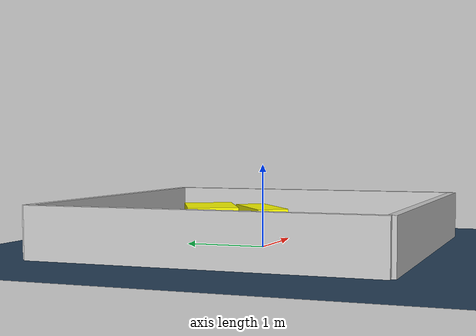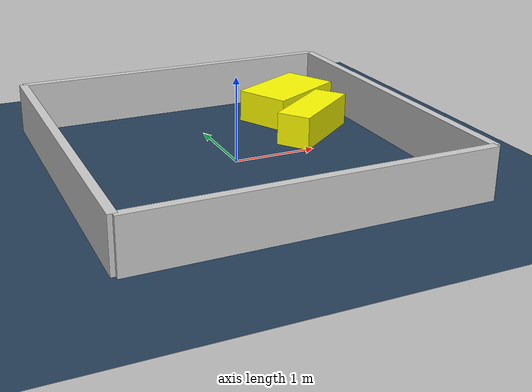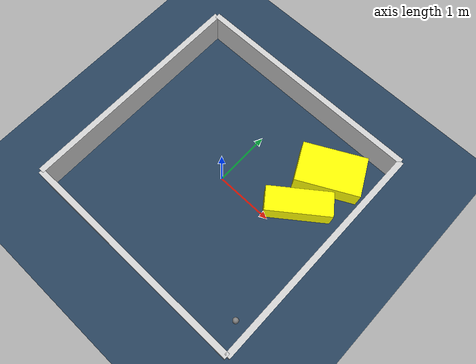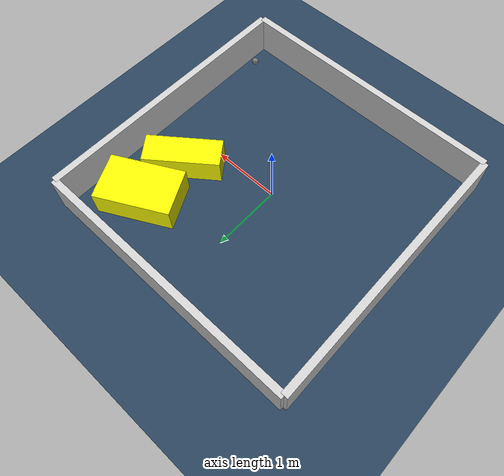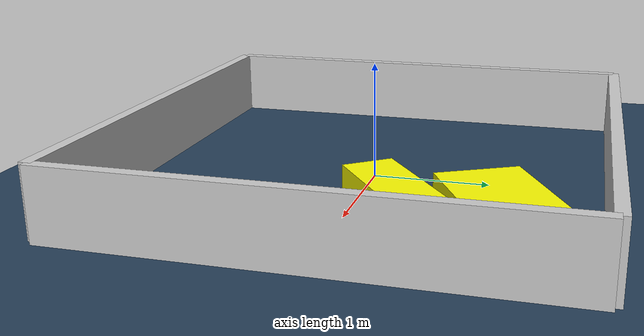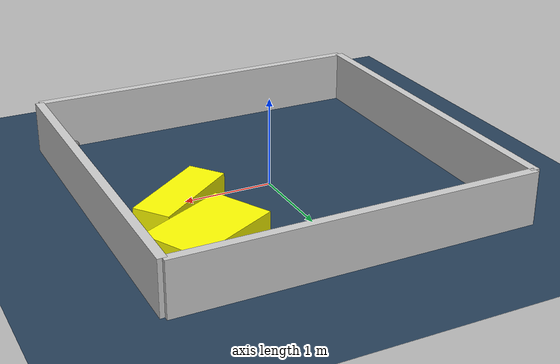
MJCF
<?xml version="1.0" ?>
<mujoco model="generated_environment">
  <option timestep="0.01" integrator="RK4" cone="elliptic"/>
  <default>
    <geom density="1"/>
  </default>
  <asset>
    <texture builtin="gradient" height="3072" rgb1="0.3 0.5 0.7" rgb2="0 0 0" type="skybox" width="512"/>
    <texture builtin="checker" height="300" mark="edge" markrgb="0.8 0.8 0.8" name="groundplane" rgb1="0.2 0.3 0.4" rgb2="0.1 0.2 0.3" type="2d" width="300"/>
    <material name="groundplane" reflectance="0.2" texrepeat="5 5" texture="groundplane" texuniform="true"/>
    <material name="robot" rgba="0.0 1.0 0.0 1"/>
  </asset>
  <worldbody>
    <light dir="0 0 -1" directional="true" pos="0 0 1.5"/>
    <geom condim="4" friction="1.0 0.005 0.001" material="groundplane" name="floor" size="0 0 0.05" type="plane"/>
    <body name="walls">
      <geom name="wall_1" condim="4" pos="-2.0 0.0 0.3" rgba="0.800000011920929 0.800000011920929 0.800000011920929 1.0" size="0.05 2.0 0.3" type="box"/>
      <geom name="wall_2" condim="4" pos="2.0 0.0 0.3" rgba="0.800000011920929 0.800000011920929 0.800000011920929 1.0" size="0.05 2.0 0.3" type="box"/>
      <geom name="wall_3" condim="4" pos="0.0 -2.0 0.3" rgba="0.800000011920929 0.800000011920929 0.800000011920929 1.0" size="2.0 0.05 0.3" type="box"/>
      <geom name="wall_4" condim="4" pos="0.0 2.0 0.3" rgba="0.800000011920929 0.800000011920929 0.800000011920929 1.0" size="2.0 0.05 0.3" type="box"/>
    </body>
    <body name="robot">
      <joint name="joint_x" type="slide" pos="0 0 0" axis="1 0 0"/>
      <joint name="joint_y" type="slide" pos="0 0 0" axis="0 1 0"/>
      <geom name="robot" type="sphere" pos="1.741446939433442 -1.5344112780070824 0.2" size="0.05" mass="5." friction="1.0 0.005 0.0001" condim="4"/>
      <site name="sensor_ball"/>
    </body>
    <body name="obstacle_1_movable">
      <geom name="obstacle_1_movable" condim="4" pos="1.237091028862284 0.47258614210695216 0.2" euler="0 0 307.05353150001" friction="1.0 0.005 0.001" rgba="1 1 0 1" size="0.20707284052373157 0.5466434814537844 0.2" type="box" mass="0.1"/>
      <joint type="free"/>
    </body>
    <body name="obstacle_2_movable">
      <geom name="obstacle_2_movable" condim="4" pos="1.2622512523477 1.2375393997902873 0.2" euler="0 0 117.39663149177989" friction="1.0 0.005 0.001" rgba="1 1 0 1" size="0.3421881690610614 0.5413433853335452 0.2" type="box" mass="0.1"/>
      <joint type="free"/>
    </body>
  </worldbody>
  <actuator>
    <motor name="actuator_x" joint="joint_x" gear="1" ctrlrange="-1 1"/>
    <motor name="actuator_y" joint="joint_y" gear="1" ctrlrange="-1 1"/>
  </actuator>
</mujoco>
